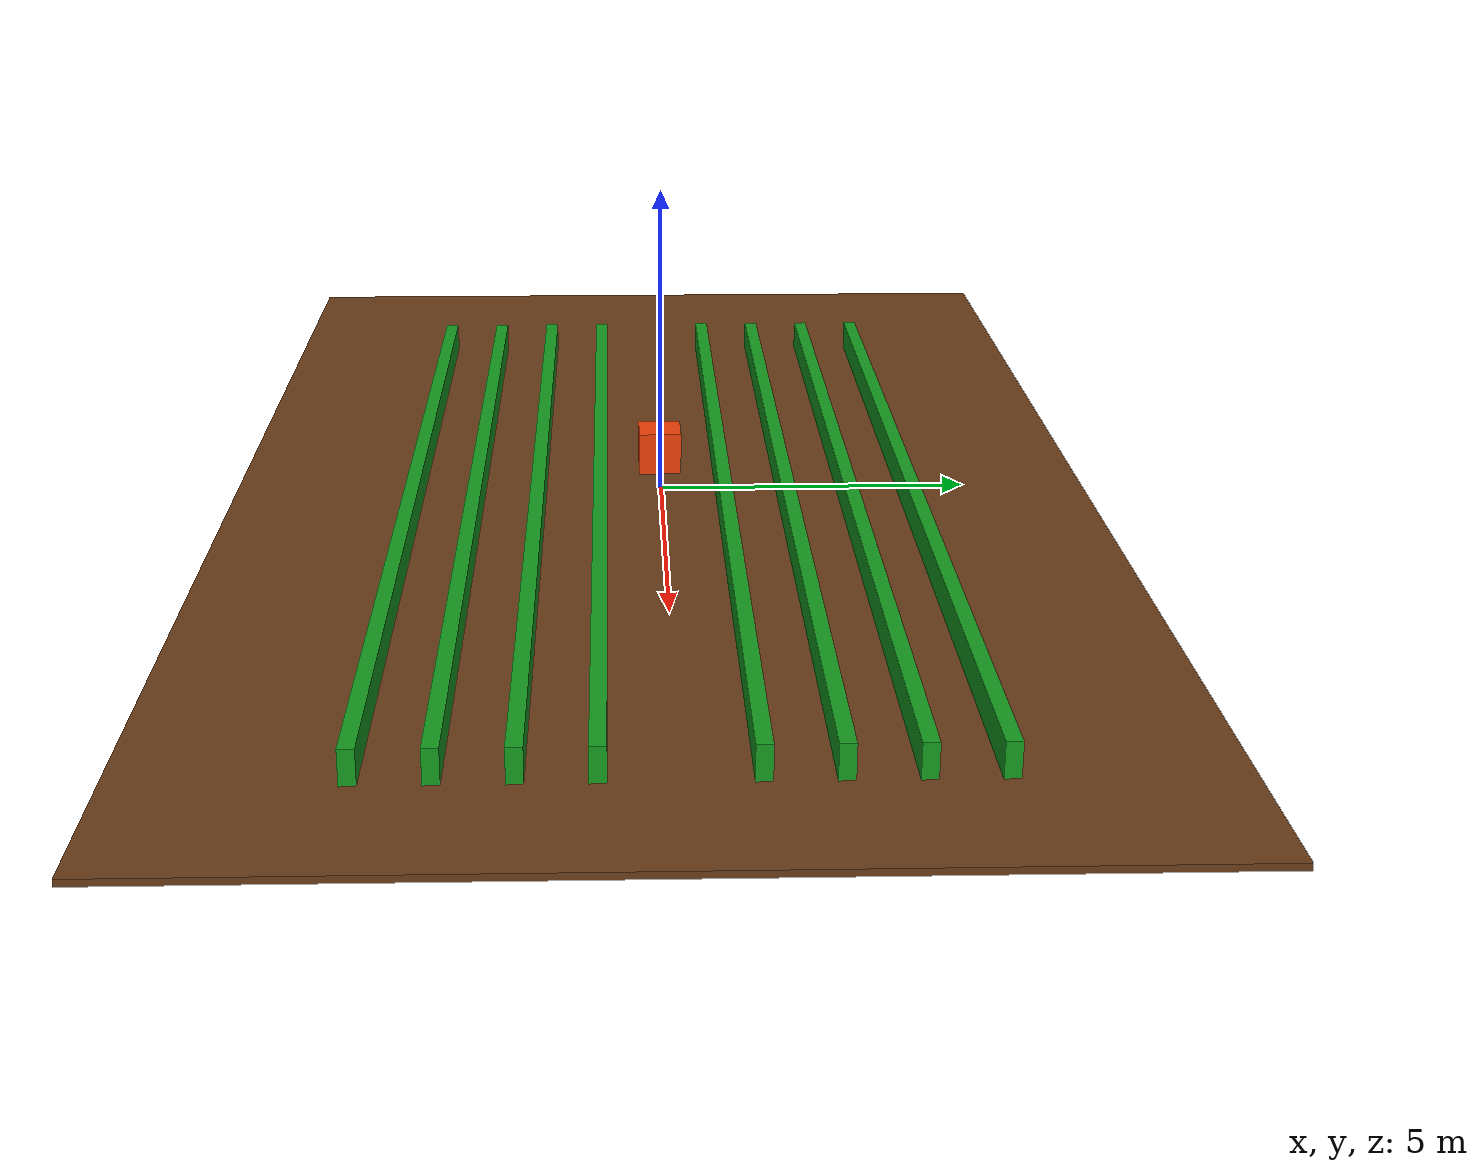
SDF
<?xml version="1.0"?>
<sdf version="1.6">
  <world name="spore_patrol_farmland">
    <gravity>0 0 -9.8</gravity>
    <physics type="ode">
      <real_time_update_rate>1000</real_time_update_rate>
      <max_step_size>0.001</max_step_size>
    </physics>

    <include>
      <uri>model://sun</uri>
    </include>

    <model name="soil">
      <static>true</static>
      <link name="soil_link">
        <collision name="soil_collision">
          <geometry>
            <box>
              <size>24 14 0.10</size>
            </box>
          </geometry>
        </collision>
        <visual name="soil_visual">
          <geometry>
            <box>
              <size>24 14 0.10</size>
            </box>
          </geometry>
          <material>
            <ambient>0.30 0.17 0.08 1</ambient>
            <diffuse>0.42 0.24 0.10 1</diffuse>
          </material>
        </visual>
      </link>
      <pose>0 0 -0.05 0 0 0</pose>
    </model>

    <!-- Parallel crop rows leave navigable corridors between them. -->
    <model name="crop_row_m4">
      <static>true</static>
      <pose>1 -4 0.25 0 0 0</pose>
      <link name="row">
        <collision name="collision"><geometry><box><size>18 0.22 0.50</size></box></geometry></collision>
        <visual name="visual"><geometry><box><size>18 0.22 0.50</size></box></geometry><material><ambient>0.05 0.35 0.08 1</ambient><diffuse>0.08 0.62 0.12 1</diffuse></material></visual>
      </link>
    </model>
    <model name="crop_row_m3">
      <static>true</static>
      <pose>1 -3 0.25 0 0 0</pose>
      <link name="row">
        <collision name="collision"><geometry><box><size>18 0.22 0.50</size></box></geometry></collision>
        <visual name="visual"><geometry><box><size>18 0.22 0.50</size></box></geometry><material><ambient>0.05 0.35 0.08 1</ambient><diffuse>0.08 0.62 0.12 1</diffuse></material></visual>
      </link>
    </model>
    <model name="crop_row_m2">
      <static>true</static>
      <pose>1 -2 0.25 0 0 0</pose>
      <link name="row">
        <collision name="collision"><geometry><box><size>18 0.22 0.50</size></box></geometry></collision>
        <visual name="visual"><geometry><box><size>18 0.22 0.50</size></box></geometry><material><ambient>0.05 0.35 0.08 1</ambient><diffuse>0.08 0.62 0.12 1</diffuse></material></visual>
      </link>
    </model>
    <model name="crop_row_m1">
      <static>true</static>
      <pose>1 -1 0.25 0 0 0</pose>
      <link name="row">
        <collision name="collision"><geometry><box><size>18 0.22 0.50</size></box></geometry></collision>
        <visual name="visual"><geometry><box><size>18 0.22 0.50</size></box></geometry><material><ambient>0.05 0.35 0.08 1</ambient><diffuse>0.08 0.62 0.12 1</diffuse></material></visual>
      </link>
    </model>
    <model name="crop_row_p1">
      <static>true</static>
      <pose>1 1 0.25 0 0 0</pose>
      <link name="row">
        <collision name="collision"><geometry><box><size>18 0.22 0.50</size></box></geometry></collision>
        <visual name="visual"><geometry><box><size>18 0.22 0.50</size></box></geometry><material><ambient>0.05 0.35 0.08 1</ambient><diffuse>0.08 0.62 0.12 1</diffuse></material></visual>
      </link>
    </model>
    <model name="crop_row_p2">
      <static>true</static>
      <pose>1 2 0.25 0 0 0</pose>
      <link name="row">
        <collision name="collision"><geometry><box><size>18 0.22 0.50</size></box></geometry></collision>
        <visual name="visual"><geometry><box><size>18 0.22 0.50</size></box></geometry><material><ambient>0.05 0.35 0.08 1</ambient><diffuse>0.08 0.62 0.12 1</diffuse></material></visual>
      </link>
    </model>
    <model name="crop_row_p3">
      <static>true</static>
      <pose>1 3 0.25 0 0 0</pose>
      <link name="row">
        <collision name="collision"><geometry><box><size>18 0.22 0.50</size></box></geometry></collision>
        <visual name="visual"><geometry><box><size>18 0.22 0.50</size></box></geometry><material><ambient>0.05 0.35 0.08 1</ambient><diffuse>0.08 0.62 0.12 1</diffuse></material></visual>
      </link>
    </model>
    <model name="crop_row_p4">
      <static>true</static>
      <pose>1 4 0.25 0 0 0</pose>
      <link name="row">
        <collision name="collision"><geometry><box><size>18 0.22 0.50</size></box></geometry></collision>
        <visual name="visual"><geometry><box><size>18 0.22 0.50</size></box></geometry><material><ambient>0.05 0.35 0.08 1</ambient><diffuse>0.08 0.62 0.12 1</diffuse></material></visual>
      </link>
    </model>

    <model name="field_obstacle">
      <static>true</static>
      <pose>-1 0 0.35 0 0 0</pose>
      <link name="obstacle">
        <collision name="collision"><geometry><box><size>0.7 0.7 0.7</size></box></geometry></collision>
        <visual name="visual"><geometry><box><size>0.7 0.7 0.7</size></box></geometry><material><ambient>0.65 0.15 0.03 1</ambient><diffuse>0.95 0.25 0.03 1</diffuse></material></visual>
      </link>
    </model>

    <gui fullscreen="0">
      <camera name="overview">
        <pose>-10 -7 5.5 0 0.42 0.95</pose>
        <view_controller>orbit</view_controller>
      </camera>
    </gui>
  </world>
</sdf>
